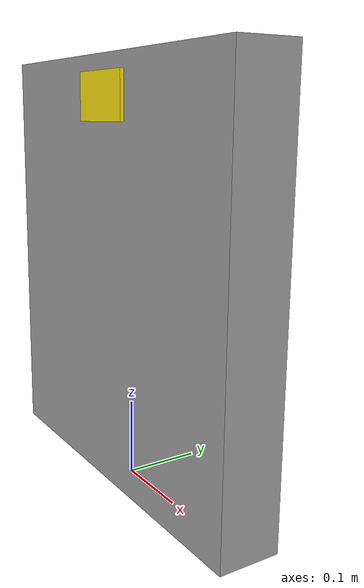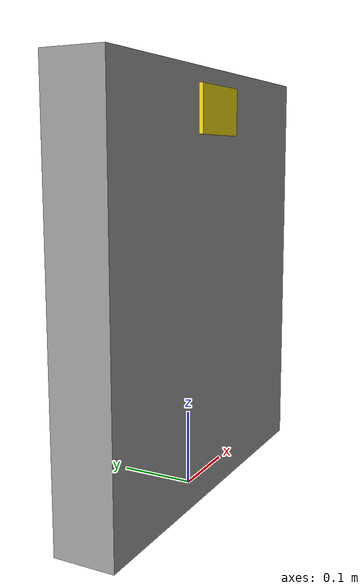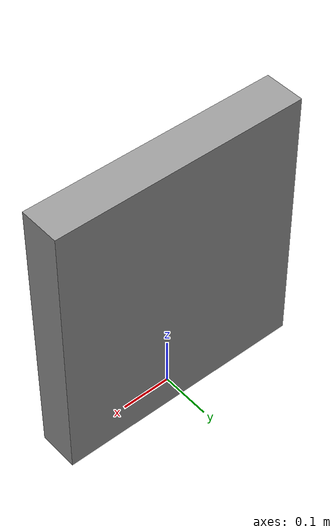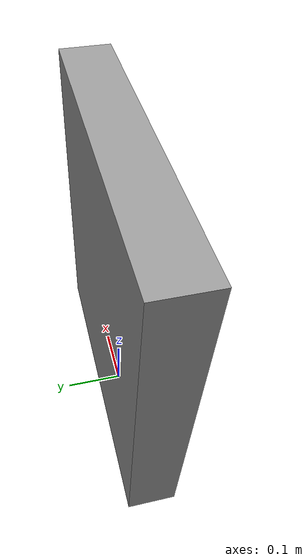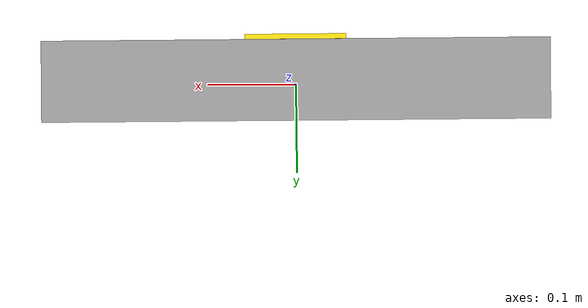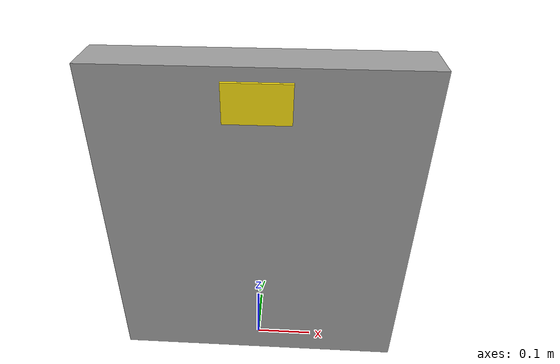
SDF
<?xml version="1.0"?>
<sdf version="1.9">
  <model name="electrical_panel">
    <static>true</static>

    <plugin filename="gz-sim-label-system" name="gz::sim::systems::Label">
      <label>1</label>
    </plugin>

    <!-- ── Main box body ────────────────────────────────────────────────── -->
    <link name="box">
      <pose>0 0 0.275 0 0 0</pose>

      <visual name="box_visual">
        <geometry>
          <box>
            <size>0.50 0.08 0.55</size>
          </box>
        </geometry>
        <material>
          <ambient>0.55 0.55 0.55 1</ambient>
          <diffuse>0.6 0.6 0.6 1</diffuse>
          <specular>0.3 0.3 0.3 1</specular>
        </material>
      </visual>

      <collision name="box_collision">
        <geometry>
          <box>
            <size>0.50 0.08 0.55</size>
          </box>
        </geometry>
      </collision>
    </link>

    <!-- ── Yellow warning stripe (front face) ───────────────────────────── -->
    <link name="warning_stripe">
      <pose>0 -0.043 0.50 0 0 0</pose>

      <visual name="stripe_visual">
        <geometry>
          <box>
            <size>0.10 0.005 0.06</size>
          </box>
        </geometry>
        <material>
          <ambient>0.95 0.85 0.05 1</ambient>
          <diffuse>0.95 0.85 0.05 1</diffuse>
        </material>
      </visual>
    </link>

  </model>
</sdf>
